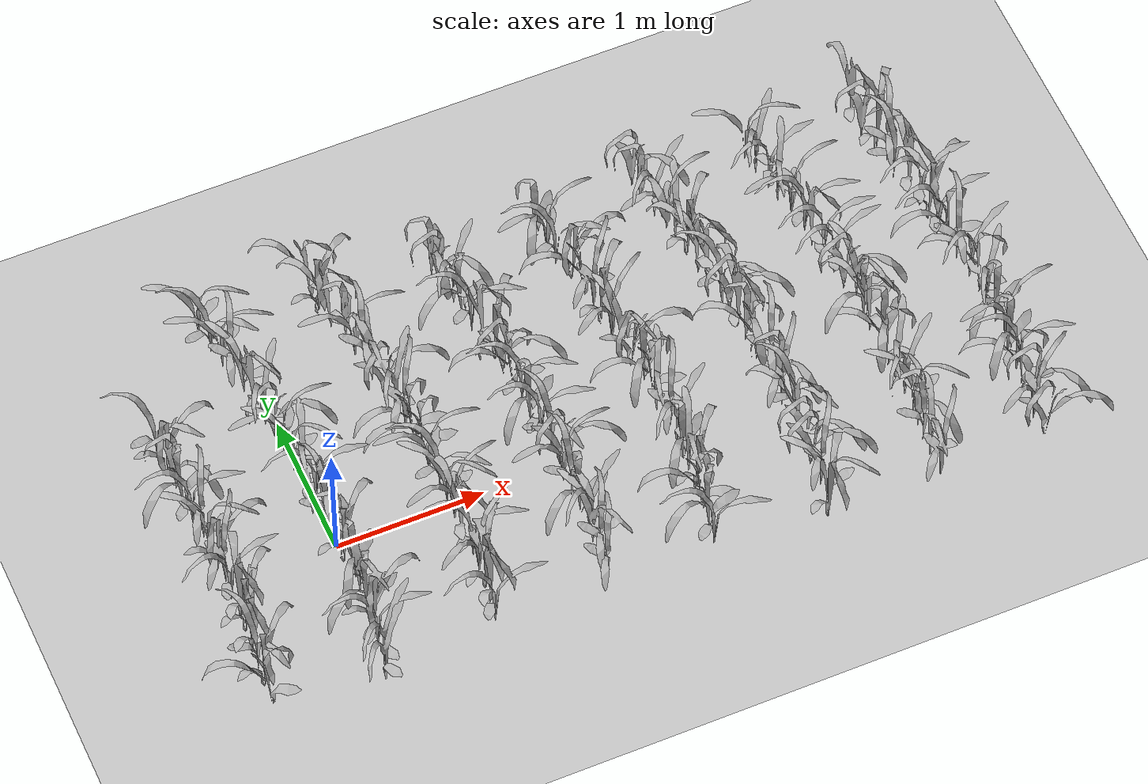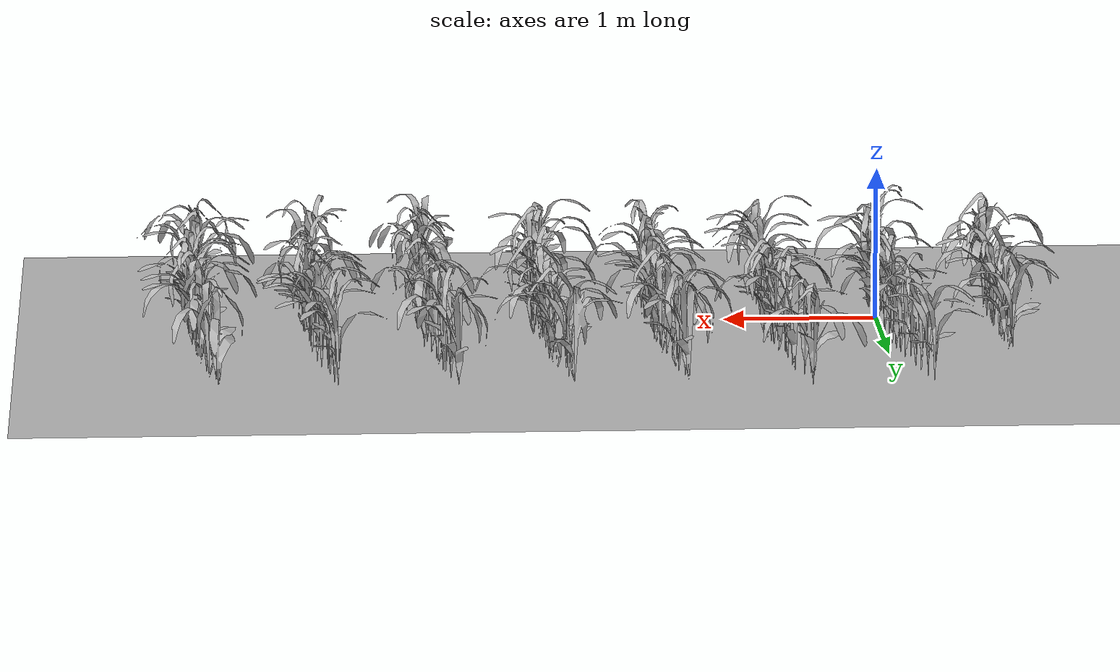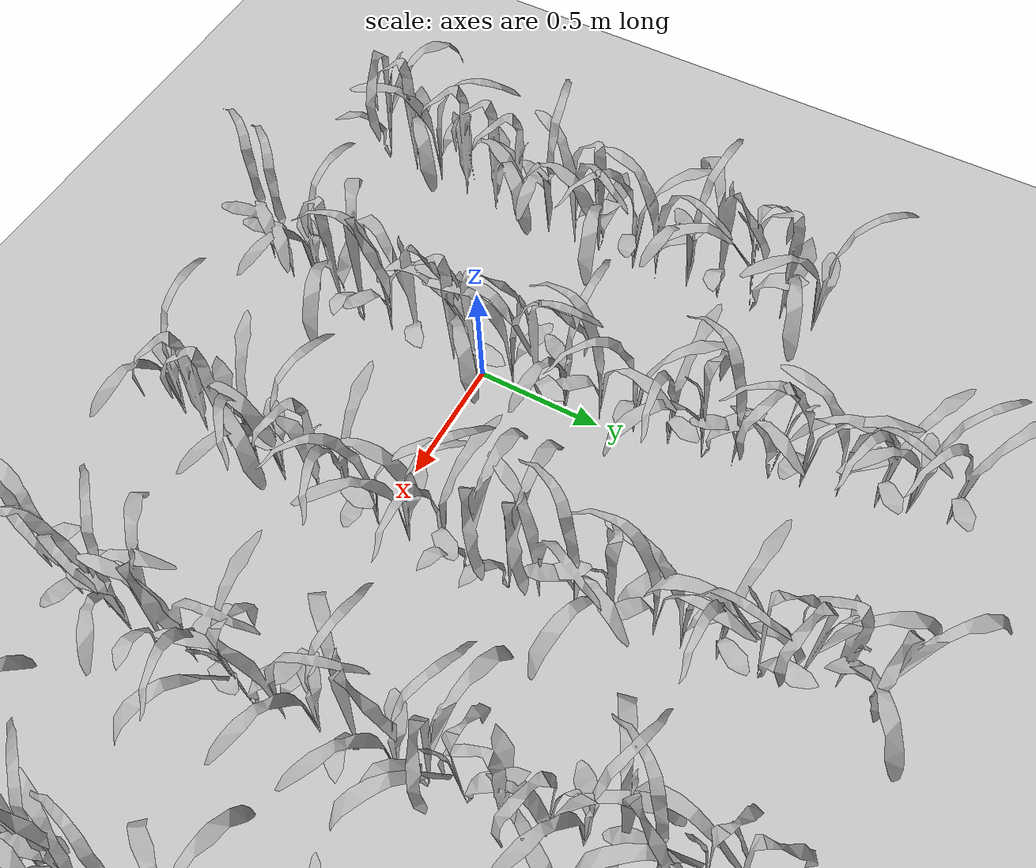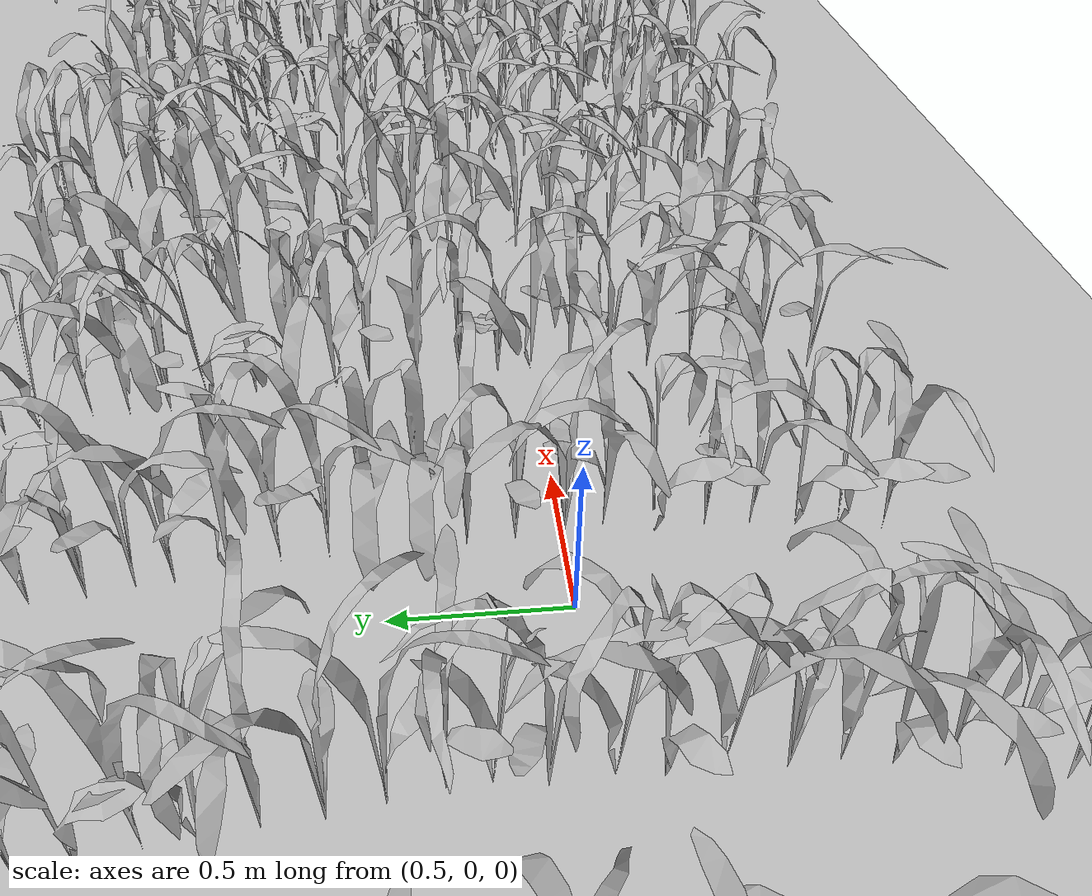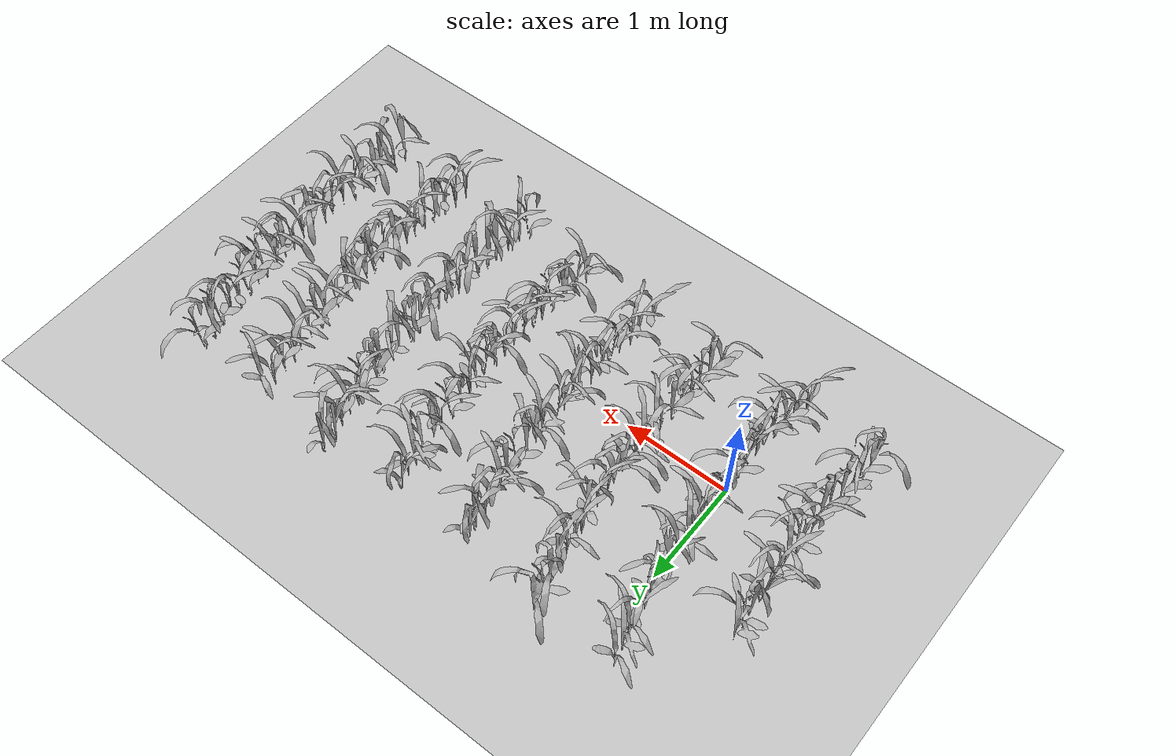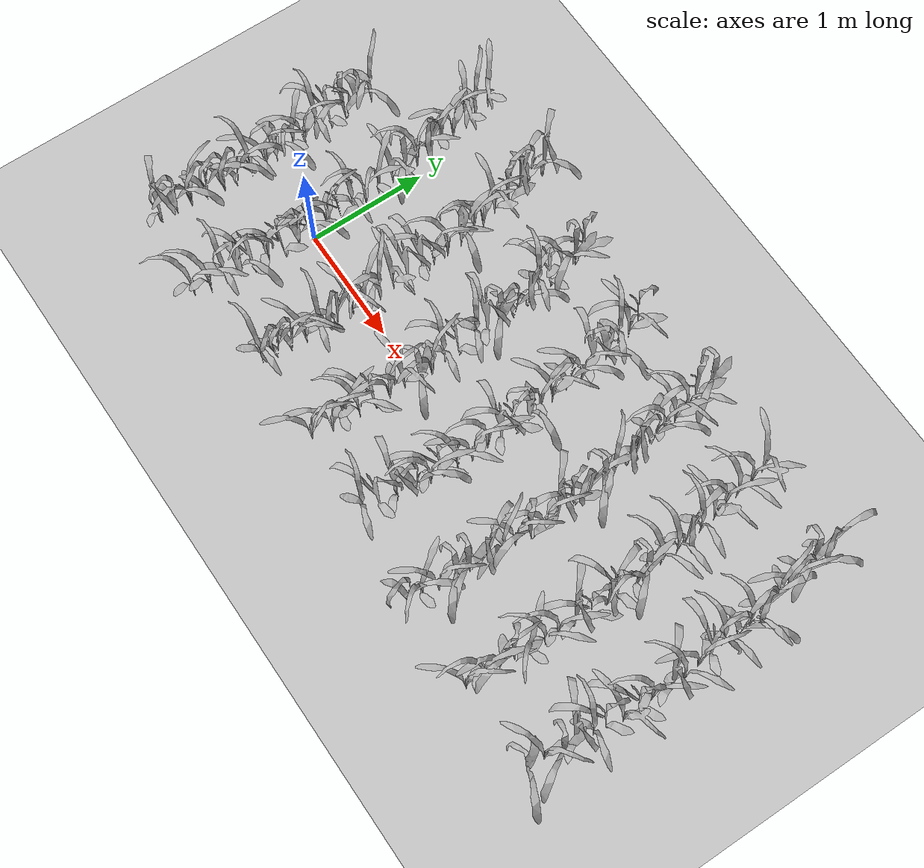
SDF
<sdf version="1.7">
 <world name="default">
  <model name="ground_plane">
   <static>1</static>
   <link name="link">
    <collision name="collision">
     <geometry><plane><normal>0 0 1</normal><size>100 100</size></plane></geometry>
     <surface>
      <contact><collide_bitmask>65535</collide_bitmask></contact>
      <friction><ode><mu>100</mu><mu2>50</mu2></ode></friction>
     </surface>
    </collision>
    <visual name="visual">
     <cast_shadows>0</cast_shadows>
     <geometry><plane><normal>0 0 1</normal><size>100 100</size></plane></geometry>
     <material>
      <script><uri>file://media/materials/scripts/gazebo.material</uri><name>Gazebo/Grey</name></script>
     </material>
    </visual>
   </link>
  </model>
  <include>
   <uri>model://maize_01</uri>
   <pose>-0.8002188986547888 -0.9164418383894887 0.0 0.0 0.0 3.545407799813552</pose>
   <name>maize_01_0270</name>
   <static>true</static>
  </include>
  <include>
   <uri>model://maize_01</uri>
   <pose>-0.793533108625914 -0.7821091685719134 0.0 0.0 0.0 1.5444546008583833</pose>
   <name>maize_01_0271</name>
   <static>true</static>
  </include>
  <include>
   <uri>model://maize_02</uri>
   <pose>-0.7884218354015532 -0.6523486797691719 0.0 0.0 0.0 0.89037856579388</pose>
   <name>maize_02_0272</name>
   <static>true</static>
  </include>
  <include>
   <uri>model://maize_01</uri>
   <pose>-0.7680971660771622 -0.5167269071253923 0.0 0.0 0.0 1.9357603876033755</pose>
   <name>maize_01_0273</name>
   <static>true</static>
  </include>
  <include>
   <uri>model://maize_01</uri>
   <pose>-0.7520772999251498 -0.3669433069541051 0.0 0.0 0.0 1.6191668682287226</pose>
   <name>maize_01_0274</name>
   <static>true</static>
  </include>
  <include>
   <uri>model://maize_01</uri>
   <pose>-0.7384776213632035 -0.25569542915268545 0.0 0.0 0.0 2.117308699031713</pose>
   <name>maize_01_0275</name>
   <static>true</static>
  </include>
  <include>
   <uri>model://maize_02</uri>
   <pose>-0.7504837247797308 -0.11181394977758727 0.0 0.0 0.0 2.3435575850103167</pose>
   <name>maize_02_0276</name>
   <static>true</static>
  </include>
  <include>
   <uri>model://maize_02</uri>
   <pose>-0.7374471579269944 0.01984103356638181 0.0 0.0 0.0 0.0006652550855696968</pose>
   <name>maize_02_0277</name>
   <static>true</static>
  </include>
  <include>
   <uri>model://maize_01</uri>
   <pose>-0.7509626873409391 0.12023233604170849 0.0 0.0 0.0 1.118404449948963</pose>
   <name>maize_01_0278</name>
   <static>true</static>
  </include>
  <include>
   <uri>model://maize_02</uri>
   <pose>-0.7428761838503689 0.2859073339763511 0.0 0.0 0.0 4.578269924456548</pose>
   <name>maize_02_0279</name>
   <static>true</static>
  </include>
  <include>
   <uri>model://maize_02</uri>
   <pose>-0.7429111928538149 0.38596135931051795 0.0 0.0 0.0 0.19026184533942525</pose>
   <name>maize_02_0280</name>
   <static>true</static>
  </include>
  <include>
   <uri>model://maize_02</uri>
   <pose>-0.7643853309212981 0.5177962357529925 0.0 0.0 0.0 1.9967447332556845</pose>
   <name>maize_02_0281</name>
   <static>true</static>
  </include>
  <include>
   <uri>model://maize_01</uri>
   <pose>-0.7711309606984543 0.6541636155581015 0.0 0.0 0.0 4.548552286749071</pose>
   <name>maize_01_0282</name>
   <static>true</static>
  </include>
  <include>
   <uri>model://maize_01</uri>
   <pose>-0.7713796271609822 0.7937366014597945 0.0 0.0 0.0 5.939889425747683</pose>
   <name>maize_01_0283</name>
   <static>true</static>
  </include>
  <include>
   <uri>model://maize_01</uri>
   <pose>-0.7814962585089783 0.9175182336756983 0.0 0.0 0.0 1.1604729980455464</pose>
   <name>maize_01_0284</name>
   <static>true</static>
  </include>
  <include>
   <uri>model://maize_02</uri>
   <pose>-0.794127631108469 1.0511752355678323 0.0 0.0 0.0 1.3740861364035015</pose>
   <name>maize_02_0285</name>
   <static>true</static>
  </include>
  <include>
   <uri>model://maize_02</uri>
   <pose>-0.09317916403045542 -1.0411301193198026 0.0 0.0 0.0 3.0248770361043698</pose>
   <name>maize_02_0342</name>
   <static>true</static>
  </include>
  <include>
   <uri>model://maize_02</uri>
   <pose>-0.04715058459887031 -0.9149745646588133 0.0 0.0 0.0 2.9217379771327554</pose>
   <name>maize_02_0343</name>
   <static>true</static>
  </include>
  <include>
   <uri>model://maize_02</uri>
   <pose>-0.03873306094379045 -0.7810881957025412 0.0 0.0 0.0 2.0437433348136653</pose>
   <name>maize_02_0344</name>
   <static>true</static>
  </include>
  <include>
   <uri>model://maize_01</uri>
   <pose>-0.018082762894432974 -0.6607433665892856 0.0 0.0 0.0 1.2004438980071206</pose>
   <name>maize_01_0345</name>
   <static>true</static>
  </include>
  <include>
   <uri>model://maize_01</uri>
   <pose>-0.0009993636233807937 -0.5414552571135788 0.0 0.0 0.0 4.496284975637431</pose>
   <name>maize_01_0346</name>
   <static>true</static>
  </include>
  <include>
   <uri>model://maize_02</uri>
   <pose>-0.004486091691262877 -0.41568443553423445 0.0 0.0 0.0 3.833725180127448</pose>
   <name>maize_02_0347</name>
   <static>true</static>
  </include>
  <include>
   <uri>model://maize_01</uri>
   <pose>0.01616174070178525 -0.27376382767500324 0.0 0.0 0.0 5.0205064088869875</pose>
   <name>maize_01_0348</name>
   <static>true</static>
  </include>
  <include>
   <uri>model://maize_01</uri>
   <pose>-0.0007191498244483998 -0.13196293968864156 0.0 0.0 0.0 1.5389419444245802</pose>
   <name>maize_01_0349</name>
   <static>true</static>
  </include>
  <include>
   <uri>model://maize_01</uri>
   <pose>0.011168193999925663 -0.01981997302990321 0.0 0.0 0.0 5.464202792104869</pose>
   <name>maize_01_0350</name>
   <static>true</static>
  </include>
  <include>
   <uri>model://maize_02</uri>
   <pose>0.00028216234449521347 0.1351322990659162 0.0 0.0 0.0 0.6751988728202549</pose>
   <name>maize_02_0351</name>
   <static>true</static>
  </include>
  <include>
   <uri>model://maize_01</uri>
   <pose>0.017735123994981145 0.2606308167351778 0.0 0.0 0.0 5.302182315842854</pose>
   <name>maize_01_0352</name>
   <static>true</static>
  </include>
  <include>
   <uri>model://maize_02</uri>
   <pose>0.01262496774186564 0.3673685148484684 0.0 0.0 0.0 2.097926352259025</pose>
   <name>maize_02_0353</name>
   <static>true</static>
  </include>
  <include>
   <uri>model://maize_02</uri>
   <pose>-0.01467198625233776 0.5009905847620525 0.0 0.0 0.0 3.436752952065676</pose>
   <name>maize_02_0354</name>
   <static>true</static>
  </include>
  <include>
   <uri>model://maize_02</uri>
   <pose>-0.03384016601505854 0.63631471767444 0.0 0.0 0.0 4.453397714198824</pose>
   <name>maize_02_0355</name>
   <static>true</static>
  </include>
  <include>
   <uri>model://maize_02</uri>
   <pose>-0.04116573949555255 0.7769262763426023 0.0 0.0 0.0 5.309323041245208</pose>
   <name>maize_02_0356</name>
   <static>true</static>
  </include>
  <include>
   <uri>model://maize_01</uri>
   <pose>-0.053808906221503555 0.9090773334807599 0.0 0.0 0.0 0.1385431718263633</pose>
   <name>maize_01_0357</name>
   <static>true</static>
  </include>
  <include>
   <uri>model://maize_02</uri>
   <pose>-0.07057680782550099 1.0243615320332038 0.0 0.0 0.0 3.1660159341214382</pose>
   <name>maize_02_0358</name>
   <static>true</static>
  </include>
  <include>
   <uri>model://maize_01</uri>
   <pose>-0.08624084182251965 1.1657001239277285 0.0 0.0 0.0 2.5941848403111543</pose>
   <name>maize_01_0359</name>
   <static>true</static>
  </include>
  <include>
   <uri>model://maize_02</uri>
   <pose>-0.1113460916552492 1.2806729261058958 0.0 0.0 0.0 4.097928249166485</pose>
   <name>maize_02_0360</name>
   <static>true</static>
  </include>
  <include>
   <uri>model://maize_02</uri>
   <pose>-0.1325778226594959 1.414056676350597 0.0 0.0 0.0 0.27283152295908575</pose>
   <name>maize_02_0361</name>
   <static>true</static>
  </include>
  <include>
   <uri>model://maize_02</uri>
   <pose>-0.15450949434219594 1.5550352799280442 0.0 0.0 0.0 4.8786373159885335</pose>
   <name>maize_02_0362</name>
   <static>true</static>
  </include>
  <include>
   <uri>model://maize_02</uri>
   <pose>-0.18751901476407293 1.6650079500554982 0.0 0.0 0.0 1.3852476217270564</pose>
   <name>maize_02_0363</name>
   <static>true</static>
  </include>
  <include>
   <uri>model://maize_02</uri>
   <pose>-0.21445559059131666 1.810794144148751 0.0 0.0 0.0 4.723301562017863</pose>
   <name>maize_02_0364</name>
   <static>true</static>
  </include>
  <include>
   <uri>model://maize_02</uri>
   <pose>0.6978790705722787 -0.9047302315472588 0.0 0.0 0.0 2.168363122702961</pose>
   <name>maize_02_0418</name>
   <static>true</static>
  </include>
  <include>
   <uri>model://maize_01</uri>
   <pose>0.7230604473100858 -0.7836591078674559 0.0 0.0 0.0 2.1900811662421313</pose>
   <name>maize_01_0419</name>
   <static>true</static>
  </include>
  <include>
   <uri>model://maize_01</uri>
   <pose>0.7366914444370268 -0.6641993029661005 0.0 0.0 0.0 1.8170478829744576</pose>
   <name>maize_01_0420</name>
   <static>true</static>
  </include>
  <include>
   <uri>model://maize_02</uri>
   <pose>0.744562424171504 -0.5335057361766115 0.0 0.0 0.0 5.829768241125498</pose>
   <name>maize_02_0421</name>
   <static>true</static>
  </include>
  <include>
   <uri>model://maize_02</uri>
   <pose>0.757261622313338 -0.4067179260540342 0.0 0.0 0.0 1.876577475122235</pose>
   <name>maize_02_0422</name>
   <static>true</static>
  </include>
  <include>
   <uri>model://maize_01</uri>
   <pose>0.7466675252160254 -0.2590361419512022 0.0 0.0 0.0 2.4352058676783934</pose>
   <name>maize_01_0423</name>
   <static>true</static>
  </include>
  <include>
   <uri>model://maize_02</uri>
   <pose>0.7551320032066174 -0.11278404908329462 0.0 0.0 0.0 5.546942471267697</pose>
   <name>maize_02_0424</name>
   <static>true</static>
  </include>
  <include>
   <uri>model://maize_02</uri>
   <pose>0.7521876000394953 -0.0024278991453459955 0.0 0.0 0.0 4.41248327064014</pose>
   <name>maize_02_0425</name>
   <static>true</static>
  </include>
  <include>
   <uri>model://maize_02</uri>
   <pose>0.7581980135205507 0.13253567714396622 0.0 0.0 0.0 1.4132915197760818</pose>
   <name>maize_02_0426</name>
   <static>true</static>
  </include>
  <include>
   <uri>model://maize_02</uri>
   <pose>0.7412562559665977 0.2703097039195838 0.0 0.0 0.0 5.1888582369400025</pose>
   <name>maize_02_0427</name>
   <static>true</static>
  </include>
  <include>
   <uri>model://maize_01</uri>
   <pose>0.7669592677394711 0.39344215341160077 0.0 0.0 0.0 3.945979340345375</pose>
   <name>maize_01_0428</name>
   <static>true</static>
  </include>
  <include>
   <uri>model://maize_01</uri>
   <pose>0.7501671875013246 0.5389201927148483 0.0 0.0 0.0 3.9870898181723637</pose>
   <name>maize_01_0429</name>
   <static>true</static>
  </include>
  <include>
   <uri>model://maize_02</uri>
   <pose>0.735929338189926 0.6496005639350063 0.0 0.0 0.0 0.02528473683742185</pose>
   <name>maize_02_0430</name>
   <static>true</static>
  </include>
  <include>
   <uri>model://maize_02</uri>
   <pose>0.730383742349623 0.7820356295766008 0.0 0.0 0.0 3.1319758022651234</pose>
   <name>maize_02_0431</name>
   <static>true</static>
  </include>
  <include>
   <uri>model://maize_01</uri>
   <pose>0.7097250108760053 0.9193610114741496 0.0 0.0 0.0 0.5501553416075347</pose>
   <name>maize_01_0432</name>
   <static>true</static>
  </include>
  <include>
   <uri>model://maize_02</uri>
   <pose>0.677732406905951 1.0604730229049675 0.0 0.0 0.0 3.587215265285549</pose>
   <name>maize_02_0433</name>
   <static>true</static>
  </include>
  <include>
   <uri>model://maize_02</uri>
   <pose>0.6698993478003713 1.160778226625151 0.0 0.0 0.0 0.38066406175763207</pose>
   <name>maize_02_0434</name>
   <static>true</static>
  </include>
  <include>
   <uri>model://maize_02</uri>
   <pose>0.650563092510995 1.2878798460697325 0.0 0.0 0.0 5.1743298468425625</pose>
   <name>maize_02_0435</name>
   <static>true</static>
  </include>
  <include>
   <uri>model://maize_01</uri>
   <pose>0.6426340744791729 1.4343705781617782 0.0 0.0 0.0 5.597724847987872</pose>
   <name>maize_01_0436</name>
   <static>true</static>
  </include>
  <include>
   <uri>model://maize_01</uri>
   <pose>0.5959683886104644 1.5604098038764842 0.0 0.0 0.0 2.889465558546595</pose>
   <name>maize_01_0437</name>
   <static>true</static>
  </include>
  <include>
   <uri>model://maize_01</uri>
   <pose>0.559163538928973 1.6789514112864212 0.0 0.0 0.0 1.4575669369323971</pose>
   <name>maize_01_0438</name>
   <static>true</static>
  </include>
  <include>
   <uri>model://maize_01</uri>
   <pose>0.5605842274191503 1.816764602240723 0.0 0.0 0.0 3.171251350043489</pose>
   <name>maize_01_0439</name>
   <static>true</static>
  </include>
  <include>
   <uri>model://maize_02</uri>
   <pose>1.4446955584237873 -0.9271673081383328 0.0 0.0 0.0 0.17564457047558238</pose>
   <name>maize_02_0495</name>
   <static>true</static>
  </include>
  <include>
   <uri>model://maize_02</uri>
   <pose>1.4753465014256217 -0.7624938306454613 0.0 0.0 0.0 0.2138632519133302</pose>
   <name>maize_02_0496</name>
   <static>true</static>
  </include>
  <include>
   <uri>model://maize_02</uri>
   <pose>1.4717301774137403 -0.6479866682665468 0.0 0.0 0.0 4.028763791048917</pose>
   <name>maize_02_0497</name>
   <static>true</static>
  </include>
  <include>
   <uri>model://maize_02</uri>
   <pose>1.5013430800071947 -0.5332318984157854 0.0 0.0 0.0 2.8081819112192457</pose>
   <name>maize_02_0498</name>
   <static>true</static>
  </include>
  <include>
   <uri>model://maize_01</uri>
   <pose>1.4980608454701094 -0.38875658464932644 0.0 0.0 0.0 4.5682725185718915</pose>
   <name>maize_01_0499</name>
   <static>true</static>
  </include>
  <include>
   <uri>model://maize_02</uri>
   <pose>1.4902704251882717 -0.25846657367410525 0.0 0.0 0.0 0.6173788085385584</pose>
   <name>maize_02_0500</name>
   <static>true</static>
  </include>
  <include>
   <uri>model://maize_02</uri>
   <pose>1.4939425291126855 -0.12171402380282922 0.0 0.0 0.0 5.3990021389789</pose>
   <name>maize_02_0501</name>
   <static>true</static>
  </include>
  <include>
   <uri>model://maize_01</uri>
   <pose>1.524334425445687 0.00034703549093220796 0.0 0.0 0.0 0.3127787020876263</pose>
   <name>maize_01_0502</name>
   <static>true</static>
  </include>
  <include>
   <uri>model://maize_02</uri>
   <pose>1.512256788985846 0.11304042539955508 0.0 0.0 0.0 0.8286331196187644</pose>
   <name>maize_02_0503</name>
   <static>true</static>
  </include>
  <include>
   <uri>model://maize_02</uri>
   <pose>1.4971577435923205 0.24170631753208185 0.0 0.0 0.0 1.9295540032365728</pose>
   <name>maize_02_0504</name>
   <static>true</static>
  </include>
  <include>
   <uri>model://maize_01</uri>
   <pose>1.4829805187276095 0.3849810957496415 0.0 0.0 0.0 4.741493641105337</pose>
   <name>maize_01_0505</name>
   <static>true</static>
  </include>
  <include>
   <uri>model://maize_02</uri>
   <pose>1.4935211402201538 0.5402731706993725 0.0 0.0 0.0 1.6997123981927504</pose>
   <name>maize_02_0506</name>
   <static>true</static>
  </include>
  <include>
   <uri>model://maize_01</uri>
   <pose>1.4828692434606026 0.6519670014201356 0.0 0.0 0.0 3.7187956740972745</pose>
   <name>maize_01_0507</name>
   <static>true</static>
  </include>
  <include>
   <uri>model://maize_01</uri>
   <pose>1.4674616754455998 0.7822274735732929 0.0 0.0 0.0 0.1238256869393759</pose>
   <name>maize_01_0508</name>
   <static>true</static>
  </include>
  <include>
   <uri>model://maize_01</uri>
   <pose>1.4670237690741412 0.9063568407456574 0.0 0.0 0.0 1.7451132115750805</pose>
   <name>maize_01_0509</name>
   <static>true</static>
  </include>
  <include>
   <uri>model://maize_01</uri>
   <pose>1.4461868738419612 1.0579403280898647 0.0 0.0 0.0 2.7346596378695285</pose>
   <name>maize_01_0510</name>
   <static>true</static>
  </include>
  <include>
   <uri>model://maize_02</uri>
   <pose>1.4129838959044558 1.175054778014882 0.0 0.0 0.0 1.7765167607179633</pose>
   <name>maize_02_0511</name>
   <static>true</static>
  </include>
  <include>
   <uri>model://maize_01</uri>
   <pose>1.4004721281310688 1.302958126196519 0.0 0.0 0.0 4.408723237968633</pose>
   <name>maize_01_0512</name>
   <static>true</static>
  </include>
  <include>
   <uri>model://maize_02</uri>
   <pose>1.3889830171013784 1.4126388165575008 0.0 0.0 0.0 3.0114665921026784</pose>
   <name>maize_02_0513</name>
   <static>true</static>
  </include>
  <include>
   <uri>model://maize_01</uri>
   <pose>1.3552393062456882 1.5684794916079887 0.0 0.0 0.0 6.065399825306115</pose>
   <name>maize_01_0514</name>
   <static>true</static>
  </include>
  <include>
   <uri>model://maize_01</uri>
   <pose>1.3372762289379378 1.6722139200098967 0.0 0.0 0.0 5.383009381280028</pose>
   <name>maize_01_0515</name>
   <static>true</static>
  </include>
  <include>
   <uri>model://maize_02</uri>
   <pose>2.175408219878683 -0.9317227771088991 0.0 0.0 0.0 1.8428136300855171</pose>
   <name>maize_02_0572</name>
   <static>true</static>
  </include>
  <include>
   <uri>model://maize_01</uri>
   <pose>2.1985722872093 -0.800513738050704 0.0 0.0 0.0 4.370848459237547</pose>
   <name>maize_01_0573</name>
   <static>true</static>
  </include>
  <include>
   <uri>model://maize_01</uri>
   <pose>2.2153289044540787 -0.6625068004249707 0.0 0.0 0.0 3.6990408817013547</pose>
   <name>maize_01_0574</name>
   <static>true</static>
  </include>
  <include>
   <uri>model://maize_01</uri>
   <pose>2.2406679881080582 -0.5182325132057229 0.0 0.0 0.0 1.7003519557280655</pose>
   <name>maize_01_0575</name>
   <static>true</static>
  </include>
  <include>
   <uri>model://maize_02</uri>
   <pose>2.2449665188024848 -0.38569710914485916 0.0 0.0 0.0 3.4517510791772676</pose>
   <name>maize_02_0576</name>
   <static>true</static>
  </include>
  <include>
   <uri>model://maize_01</uri>
   <pose>2.246975681705931 -0.2788495137564236 0.0 0.0 0.0 4.921849665653469</pose>
   <name>maize_01_0577</name>
   <static>true</static>
  </include>
  <include>
   <uri>model://maize_02</uri>
   <pose>2.264593710906754 -0.1559789657180731 0.0 0.0 0.0 2.8485137662370277</pose>
   <name>maize_02_0578</name>
   <static>true</static>
  </include>
  <include>
   <uri>model://maize_02</uri>
   <pose>2.270398310385049 -0.02723519040147457 0.0 0.0 0.0 0.13452669398973693</pose>
   <name>maize_02_0579</name>
   <static>true</static>
  </include>
  <include>
   <uri>model://maize_02</uri>
   <pose>2.2478875287847884 0.12686940359317114 0.0 0.0 0.0 3.371265679201905</pose>
   <name>maize_02_0580</name>
   <static>true</static>
  </include>
  <include>
   <uri>model://maize_01</uri>
   <pose>2.2762169898228817 0.2387262884150673 0.0 0.0 0.0 3.761739008824545</pose>
   <name>maize_01_0581</name>
   <static>true</static>
  </include>
  <include>
   <uri>model://maize_01</uri>
   <pose>2.268191222802566 0.37651419740039554 0.0 0.0 0.0 4.936623278093559</pose>
   <name>maize_01_0582</name>
   <static>true</static>
  </include>
  <include>
   <uri>model://maize_01</uri>
   <pose>2.2389980721782075 0.5114499408339684 0.0 0.0 0.0 0.729039537684889</pose>
   <name>maize_01_0583</name>
   <static>true</static>
  </include>
  <include>
   <uri>model://maize_02</uri>
   <pose>2.224961379976667 0.623159925227403 0.0 0.0 0.0 3.919855125104561</pose>
   <name>maize_02_0584</name>
   <static>true</static>
  </include>
  <include>
   <uri>model://maize_02</uri>
   <pose>2.208514076696798 0.7502625631892693 0.0 0.0 0.0 5.852349176338025</pose>
   <name>maize_02_0585</name>
   <static>true</static>
  </include>
  <include>
   <uri>model://maize_01</uri>
   <pose>2.19567644351059 0.8931876348104201 0.0 0.0 0.0 1.6730694801216566</pose>
   <name>maize_01_0586</name>
   <static>true</static>
  </include>
  <include>
   <uri>model://maize_02</uri>
   <pose>2.20000402184804 1.0280199078562935 0.0 0.0 0.0 6.1387255322320735</pose>
   <name>maize_02_0587</name>
   <static>true</static>
  </include>
  <include>
   <uri>model://maize_01</uri>
   <pose>2.1824297625412323 1.1391933630056623 0.0 0.0 0.0 3.645337986518756</pose>
   <name>maize_01_0588</name>
   <static>true</static>
  </include>
  <include>
   <uri>model://maize_01</uri>
   <pose>2.1602795942191766 1.285263130314841 0.0 0.0 0.0 0.9808309953931125</pose>
   <name>maize_01_0589</name>
   <static>true</static>
  </include>
  <include>
   <uri>model://maize_02</uri>
   <pose>2.1107743076620227 1.4314621311201445 0.0 0.0 0.0 1.6361342497285742</pose>
   <name>maize_02_0590</name>
   <static>true</static>
  </include>
  <include>
   <uri>model://maize_02</uri>
   <pose>2.098699012996781 1.5460212846493426 0.0 0.0 0.0 5.423124513872271</pose>
   <name>maize_02_0591</name>
   <static>true</static>
  </include>
  <include>
   <uri>model://maize_01</uri>
   <pose>2.0680073592100983 1.6649861251940992 0.0 0.0 0.0 5.037961876887807</pose>
   <name>maize_01_0592</name>
   <static>true</static>
  </include>
  <include>
   <uri>model://maize_01</uri>
   <pose>2.918560484264256 -1.032775426982506 0.0 0.0 0.0 1.7973275646279938</pose>
   <name>maize_01_0648</name>
   <static>true</static>
  </include>
  <include>
   <uri>model://maize_02</uri>
   <pose>2.9536428081942137 -0.9322224948040997 0.0 0.0 0.0 4.364738460943563</pose>
   <name>maize_02_0649</name>
   <static>true</static>
  </include>
  <include>
   <uri>model://maize_02</uri>
   <pose>2.9714137856407885 -0.7971226214430874 0.0 0.0 0.0 0.012774718766267233</pose>
   <name>maize_02_0650</name>
   <static>true</static>
  </include>
  <include>
   <uri>model://maize_01</uri>
   <pose>2.9754165197403775 -0.6410155340969016 0.0 0.0 0.0 0.11954166717770905</pose>
   <name>maize_01_0651</name>
   <static>true</static>
  </include>
  <include>
   <uri>model://maize_01</uri>
   <pose>2.9812355528014414 -0.5304123041801384 0.0 0.0 0.0 6.178588632154079</pose>
   <name>maize_01_0652</name>
   <static>true</static>
  </include>
  <include>
   <uri>model://maize_01</uri>
   <pose>3.0018151960039625 -0.39856134892026446 0.0 0.0 0.0 2.860036295983233</pose>
   <name>maize_01_0653</name>
   <static>true</static>
  </include>
  <include>
   <uri>model://maize_02</uri>
   <pose>3.019661975199068 -0.2708567717943418 0.0 0.0 0.0 1.0648328077401672</pose>
   <name>maize_02_0654</name>
   <static>true</static>
  </include>
  <include>
   <uri>model://maize_02</uri>
   <pose>3.000537568672787 -0.14032593451266914 0.0 0.0 0.0 6.200247204934933</pose>
   <name>maize_02_0655</name>
   <static>true</static>
  </include>
  <include>
   <uri>model://maize_01</uri>
   <pose>3.027752178570133 -0.012363424623810765 0.0 0.0 0.0 5.736421674447134</pose>
   <name>maize_01_0656</name>
   <static>true</static>
  </include>
  <include>
   <uri>model://maize_02</uri>
   <pose>3.0259073942641845 0.10513898239732158 0.0 0.0 0.0 0.23004234901527398</pose>
   <name>maize_02_0657</name>
   <static>true</static>
  </include>
  <include>
   <uri>model://maize_01</uri>
   <pose>2.9974311621424854 0.25008596593342397 0.0 0.0 0.0 3.244670156310118</pose>
   <name>maize_01_0658</name>
   <static>true</static>
  </include>
  <include>
   <uri>model://maize_01</uri>
   <pose>2.986482712115874 0.40058436394988267 0.0 0.0 0.0 5.34124484187157</pose>
   <name>maize_01_0659</name>
   <static>true</static>
  </include>
  <include>
   <uri>model://maize_01</uri>
   <pose>2.9920149227654744 0.5175134410583079 0.0 0.0 0.0 2.249220403547857</pose>
   <name>maize_01_0660</name>
   <static>true</static>
  </include>
  <include>
   <uri>model://maize_01</uri>
   <pose>2.9936372158570017 0.6561185172939666 0.0 0.0 0.0 0.1200815729381418</pose>
   <name>maize_01_0661</name>
   <static>true</static>
  </include>
  <include>
   <uri>model://maize_02</uri>
   <pose>2.9764000358267997 0.7609150389027249 0.0 0.0 0.0 1.3579297440976894</pose>
   <name>maize_02_0662</name>
   <static>true</static>
  </include>
  <include>
   <uri>model://maize_01</uri>
   <pose>2.956193957426344 0.9173661721187619 0.0 0.0 0.0 2.717237671119562</pose>
   <name>maize_01_0663</name>
   <static>true</static>
  </include>
  <include>
   <uri>model://maize_01</uri>
   <pose>2.9284395597948225 1.0130387341129896 0.0 0.0 0.0 2.840083422879573</pose>
   <name>maize_01_0664</name>
   <static>true</static>
  </include>
  <include>
   <uri>model://maize_01</uri>
   <pose>2.9205932992090022 1.1605495562675479 0.0 0.0 0.0 1.664180750708071</pose>
   <name>maize_01_0665</name>
   <static>true</static>
  </include>
  <include>
   <uri>model://maize_02</uri>
   <pose>2.894062223417094 1.2898149017307963 0.0 0.0 0.0 3.4341356480276883</pose>
   <name>maize_02_0666</name>
   <static>true</static>
  </include>
  <include>
   <uri>model://maize_02</uri>
   <pose>2.8811611800713615 1.4084251222262087 0.0 0.0 0.0 5.488338665301171</pose>
   <name>maize_02_0667</name>
   <static>true</static>
  </include>
  <include>
   <uri>model://maize_02</uri>
   <pose>2.8522841326756017 1.5347999767631728 0.0 0.0 0.0 2.8168730163452125</pose>
   <name>maize_02_0668</name>
   <static>true</static>
  </include>
  <include>
   <uri>model://maize_01</uri>
   <pose>2.8026869322261594 1.6681888485072276 0.0 0.0 0.0 5.527477361010719</pose>
   <name>maize_01_0669</name>
   <static>true</static>
  </include>
  <include>
   <uri>model://maize_01</uri>
   <pose>2.8066266424319175 1.7986506992578677 0.0 0.0 0.0 6.132510261217237</pose>
   <name>maize_01_0670</name>
   <static>true</static>
  </include>
  <include>
   <uri>model://maize_02</uri>
   <pose>3.688747612041357 -1.0429171861788593 0.0 0.0 0.0 6.1776922757268675</pose>
   <name>maize_02_0725</name>
   <static>true</static>
  </include>
  <include>
   <uri>model://maize_02</uri>
   <pose>3.6882257226149817 -0.8935145437772881 0.0 0.0 0.0 3.4659356307327016</pose>
   <name>maize_02_0726</name>
   <static>true</static>
  </include>
  <include>
   <uri>model://maize_02</uri>
   <pose>3.698126995816304 -0.7568874078445423 0.0 0.0 0.0 0.5261879222741096</pose>
   <name>maize_02_0727</name>
   <static>true</static>
  </include>
  <include>
   <uri>model://maize_01</uri>
   <pose>3.720352653562928 -0.6359702464534743 0.0 0.0 0.0 5.721623015901197</pose>
   <name>maize_01_0728</name>
   <static>true</static>
  </include>
  <include>
   <uri>model://maize_02</uri>
   <pose>3.7434214015407927 -0.5216579598422045 0.0 0.0 0.0 4.489763009271673</pose>
   <name>maize_02_0729</name>
   <static>true</static>
  </include>
  <include>
   <uri>model://maize_02</uri>
   <pose>3.7466056974428823 -0.3911924512585235 0.0 0.0 0.0 2.8887850661411876</pose>
   <name>maize_02_0730</name>
   <static>true</static>
  </include>
  <include>
   <uri>model://maize_02</uri>
   <pose>3.7372346028530727 -0.27006286911211613 0.0 0.0 0.0 3.240535264157806</pose>
   <name>maize_02_0731</name>
   <static>true</static>
  </include>
  <include>
   <uri>model://maize_01</uri>
   <pose>3.7479810958056805 -0.12950719885411419 0.0 0.0 0.0 3.2321794587355384</pose>
   <name>maize_01_0732</name>
   <static>true</static>
  </include>
  <include>
   <uri>model://maize_01</uri>
   <pose>3.7766709808780123 0.013450531478723576 0.0 0.0 0.0 5.019867971382296</pose>
   <name>maize_01_0733</name>
   <static>true</static>
  </include>
  <include>
   <uri>model://maize_01</uri>
   <pose>3.753544177535271 0.15778226160775213 0.0 0.0 0.0 2.7603728257065554</pose>
   <name>maize_01_0734</name>
   <static>true</static>
  </include>
  <include>
   <uri>model://maize_01</uri>
   <pose>3.7550508862912984 0.2523226740727799 0.0 0.0 0.0 4.416114434743158</pose>
   <name>maize_01_0735</name>
   <static>true</static>
  </include>
  <include>
   <uri>model://maize_02</uri>
   <pose>3.7708466878849936 0.397494493438679 0.0 0.0 0.0 3.904103865331187</pose>
   <name>maize_02_0736</name>
   <static>true</static>
  </include>
  <include>
   <uri>model://maize_01</uri>
   <pose>3.734910809547832 0.5135760815457436 0.0 0.0 0.0 6.264106835538231</pose>
   <name>maize_01_0737</name>
   <static>true</static>
  </include>
  <include>
   <uri>model://maize_02</uri>
   <pose>3.728745535191926 0.653829958183947 0.0 0.0 0.0 2.403243495958488</pose>
   <name>maize_02_0738</name>
   <static>true</static>
  </include>
  <include>
   <uri>model://maize_02</uri>
   <pose>3.7220331527050923 0.8045826014128507 0.0 0.0 0.0 2.1905652994648155</pose>
   <name>maize_02_0739</name>
   <static>true</static>
  </include>
  <include>
   <uri>model://maize_01</uri>
   <pose>3.6917224289482014 0.9118364583428772 0.0 0.0 0.0 2.622845698904577</pose>
   <name>maize_01_0740</name>
   <static>true</static>
  </include>
  <include>
   <uri>model://maize_02</uri>
   <pose>3.694212716275375 1.033335420427188 0.0 0.0 0.0 1.958903634607631</pose>
   <name>maize_02_0741</name>
   <static>true</static>
  </include>
  <include>
   <uri>model://maize_02</uri>
   <pose>3.668637452932177 1.1878290376423901 0.0 0.0 0.0 5.416990072466718</pose>
   <name>maize_02_0742</name>
   <static>true</static>
  </include>
  <include>
   <uri>model://maize_02</uri>
   <pose>3.628341934353887 1.311336523600828 0.0 0.0 0.0 3.3206211863122763</pose>
   <name>maize_02_0743</name>
   <static>true</static>
  </include>
  <include>
   <uri>model://maize_02</uri>
   <pose>3.620676475472768 1.4338685445604493 0.0 0.0 0.0 2.419074658250067</pose>
   <name>maize_02_0744</name>
   <static>true</static>
  </include>
  <include>
   <uri>model://maize_02</uri>
   <pose>3.5942945967407645 1.5833866911074865 0.0 0.0 0.0 3.092072687922406</pose>
   <name>maize_02_0745</name>
   <static>true</static>
  </include>
  <include>
   <uri>model://maize_02</uri>
   <pose>3.574330516872203 1.7118865986489948 0.0 0.0 0.0 4.864998911972574</pose>
   <name>maize_02_0746</name>
   <static>true</static>
  </include>
  <include>
   <uri>model://maize_01</uri>
   <pose>4.428258724902253 -1.024911118814485 0.0 0.0 0.0 0.3501542276524404</pose>
   <name>maize_01_0802</name>
   <static>true</static>
  </include>
  <include>
   <uri>model://maize_02</uri>
   <pose>4.421798371597776 -0.8727709050052311 0.0 0.0 0.0 5.816370396182511</pose>
   <name>maize_02_0803</name>
   <static>true</static>
  </include>
  <include>
   <uri>model://maize_01</uri>
   <pose>4.474544515514928 -0.7435441641992661 0.0 0.0 0.0 6.081233215013003</pose>
   <name>maize_01_0804</name>
   <static>true</static>
  </include>
  <include>
   <uri>model://maize_01</uri>
   <pose>4.457463233720464 -0.6305226798788238 0.0 0.0 0.0 3.433244519058227</pose>
   <name>maize_01_0805</name>
   <static>true</static>
  </include>
  <include>
   <uri>model://maize_02</uri>
   <pose>4.482495281601176 -0.49745255967135577 0.0 0.0 0.0 1.878023267179972</pose>
   <name>maize_02_0806</name>
   <static>true</static>
  </include>
  <include>
   <uri>model://maize_01</uri>
   <pose>4.478652204464918 -0.3737878094272509 0.0 0.0 0.0 4.784296821922854</pose>
   <name>maize_01_0807</name>
   <static>true</static>
  </include>
  <include>
   <uri>model://maize_02</uri>
   <pose>4.5161783783127305 -0.2549938330971469 0.0 0.0 0.0 5.444351984790625</pose>
   <name>maize_02_0808</name>
   <static>true</static>
  </include>
  <include>
   <uri>model://maize_01</uri>
   <pose>4.518664219738088 -0.10904483288372399 0.0 0.0 0.0 4.6370434709393065</pose>
   <name>maize_01_0809</name>
   <static>true</static>
  </include>
  <include>
   <uri>model://maize_02</uri>
   <pose>4.503621716754939 0.00765724169372431 0.0 0.0 0.0 3.119650408133842</pose>
   <name>maize_02_0810</name>
   <static>true</static>
  </include>
  <include>
   <uri>model://maize_01</uri>
   <pose>4.527155270184656 0.15620801267115483 0.0 0.0 0.0 3.23670827774401</pose>
   <name>maize_01_0811</name>
   <static>true</static>
  </include>
  <include>
   <uri>model://maize_02</uri>
   <pose>4.518769557890403 0.2772062168749662 0.0 0.0 0.0 2.62844789524181</pose>
   <name>maize_02_0812</name>
   <static>true</static>
  </include>
  <include>
   <uri>model://maize_02</uri>
   <pose>4.493040081791717 0.4259063403901108 0.0 0.0 0.0 0.2720617496315628</pose>
   <name>maize_02_0813</name>
   <static>true</static>
  </include>
  <include>
   <uri>model://maize_01</uri>
   <pose>4.495047542165501 0.5422632266978816 0.0 0.0 0.0 3.8708788545227626</pose>
   <name>maize_01_0814</name>
   <static>true</static>
  </include>
  <include>
   <uri>model://maize_02</uri>
   <pose>4.467115505936324 0.6619393075486887 0.0 0.0 0.0 2.237019418122723</pose>
   <name>maize_02_0815</name>
   <static>true</static>
  </include>
  <include>
   <uri>model://maize_01</uri>
   <pose>4.4724168375300515 0.8042521964315338 0.0 0.0 0.0 1.4208696716772449</pose>
   <name>maize_01_0816</name>
   <static>true</static>
  </include>
  <include>
   <uri>model://maize_02</uri>
   <pose>4.462764421456583 0.913725053079301 0.0 0.0 0.0 2.311196831878306</pose>
   <name>maize_02_0817</name>
   <static>true</static>
  </include>
  <include>
   <uri>model://maize_01</uri>
   <pose>4.444902534794071 1.0449514740277495 0.0 0.0 0.0 2.254280212005031</pose>
   <name>maize_01_0818</name>
   <static>true</static>
  </include>
  <include>
   <uri>model://maize_02</uri>
   <pose>4.402552266676862 1.1924223752808751 0.0 0.0 0.0 0.808557554339254</pose>
   <name>maize_02_0819</name>
   <static>true</static>
  </include>
  <include>
   <uri>model://maize_02</uri>
   <pose>4.404544890254881 1.3051181373606109 0.0 0.0 0.0 0.22693387364265194</pose>
   <name>maize_02_0820</name>
   <static>true</static>
  </include>
  <include>
   <uri>model://maize_01</uri>
   <pose>4.391354734974842 1.431450933308535 0.0 0.0 0.0 1.7935843055039333</pose>
   <name>maize_01_0821</name>
   <static>true</static>
  </include>
  <include>
   <uri>model://maize_01</uri>
   <pose>4.34313239400934 1.5657937010231568 0.0 0.0 0.0 5.9831160567424115</pose>
   <name>maize_01_0822</name>
   <static>true</static>
  </include>
  <include>
   <uri>model://maize_01</uri>
   <pose>4.336528379577507 1.700750477172522 0.0 0.0 0.0 2.306916947238134</pose>
   <name>maize_01_0823</name>
   <static>true</static>
  </include>
 </world>
</sdf>
